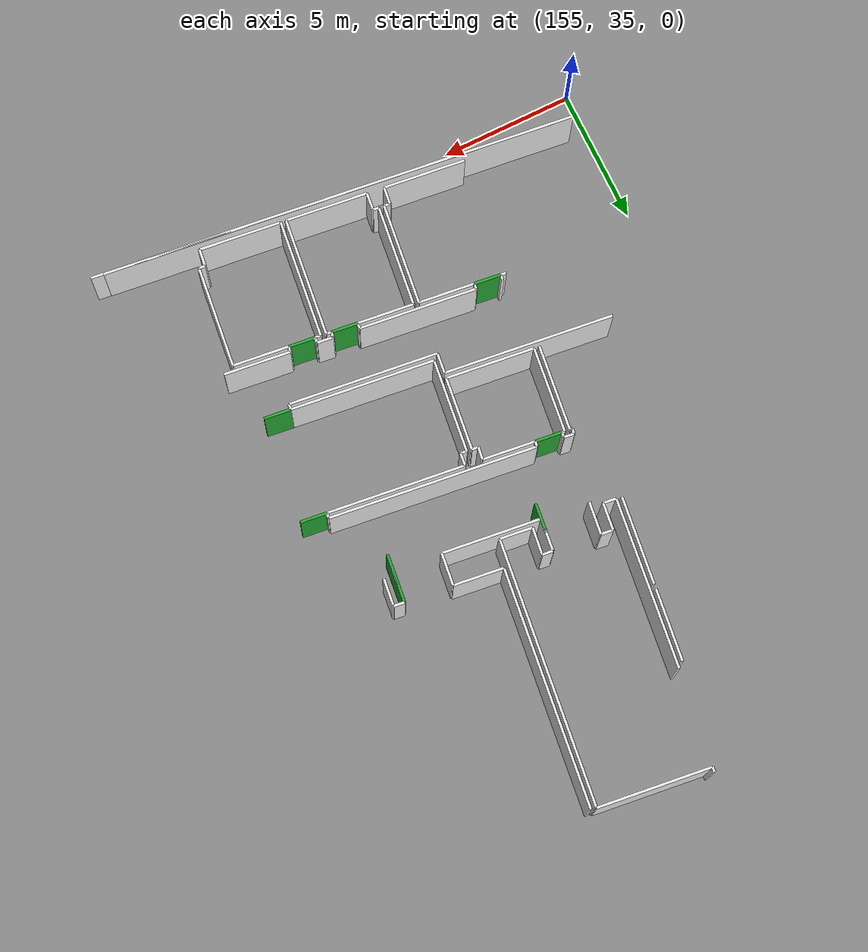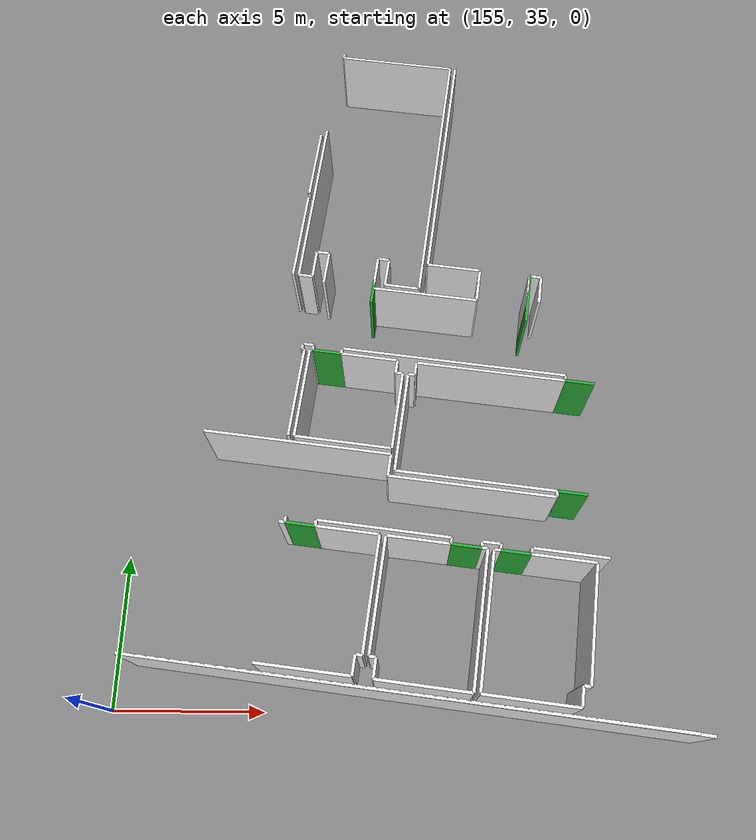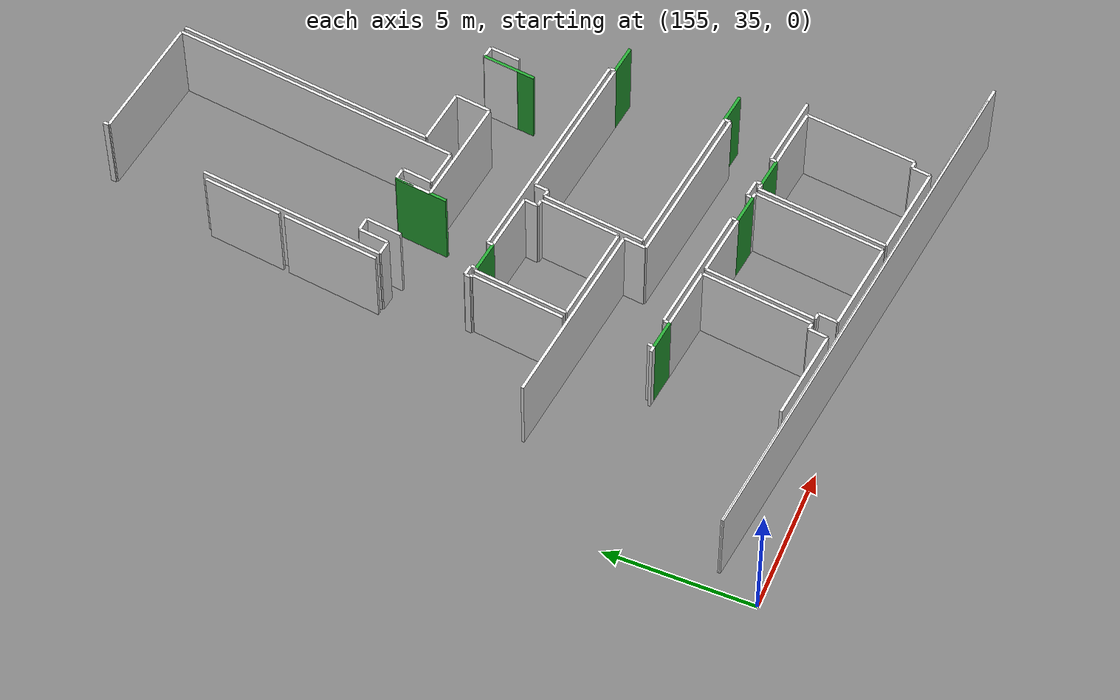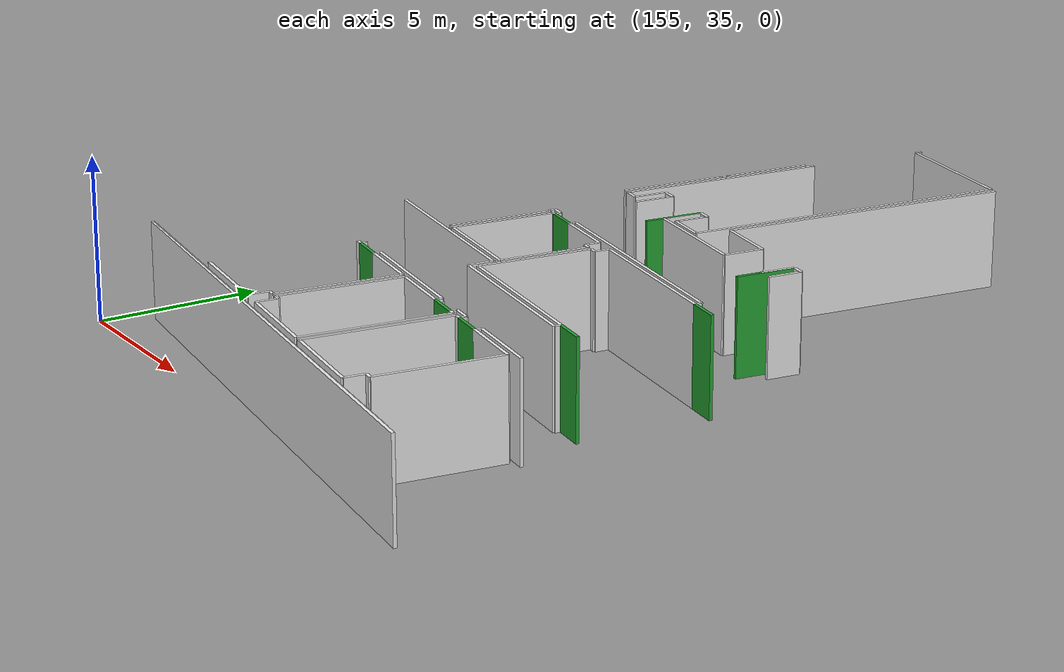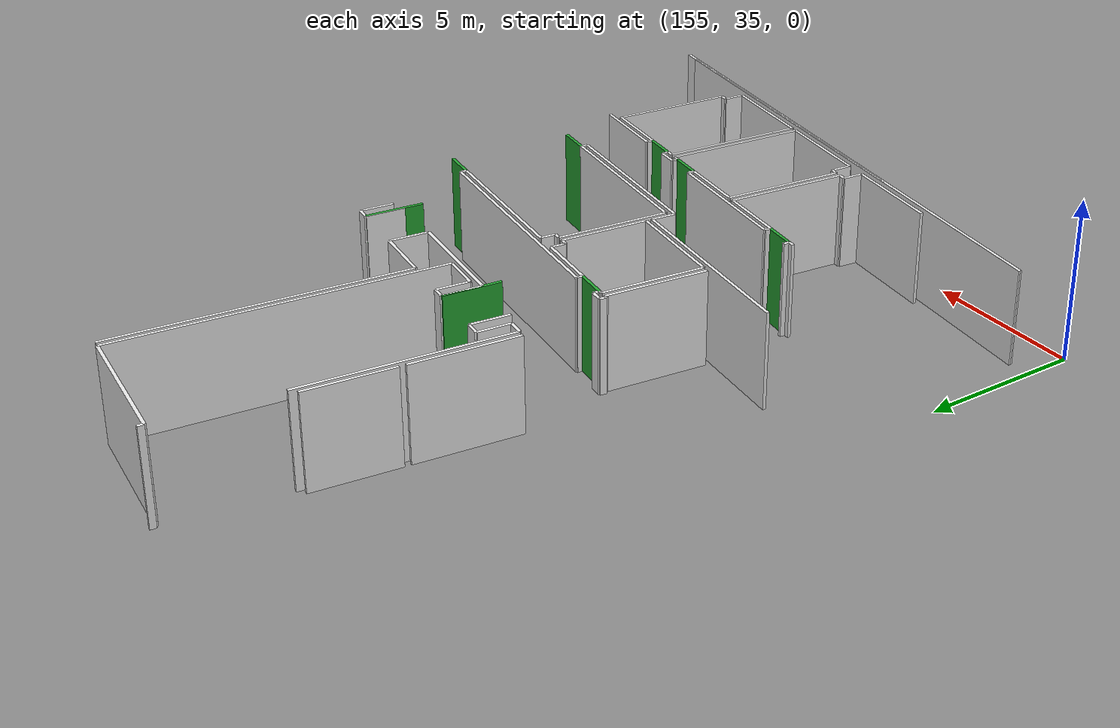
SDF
<sdf version="1.6">
 <world name="default">
  <model name="wall_166.5_39.9_1.5">
   <static>true</static>
   <pose>166.50500000000466 39.91000000014901 1.5 0 0 -0.1206236686924795</pose>
   <link name="link">
    <visual name="visual">
     <geometry><box><size>0.9972462083198822 0.1 3</size></box></geometry>
     <material>
      <script><uri>file://media/materials/scripts/gazebo.material</uri><name>Gazebo/Green</name></script>
     </material>
    </visual>
    <collision name="collision"><geometry><box><size>0.9972462083198822 0.1 3</size></box></geometry></collision>
   </link>
  </model>
  <model name="wall_161.1_40.6_1.5">
   <static>true</static>
   <pose>161.1350000000093 40.56000000005588 1.5 0 0 -0.1206236686924795</pose>
   <link name="link">
    <visual name="visual">
     <geometry><box><size>0.9972462083198822 0.1 3</size></box></geometry>
     <material>
      <script><uri>file://media/materials/scripts/gazebo.material</uri><name>Gazebo/Green</name></script>
     </material>
    </visual>
    <collision name="collision"><geometry><box><size>0.9972462083198822 0.1 3</size></box></geometry></collision>
   </link>
  </model>
  <model name="wall_168.1_39.7_1.5">
   <static>true</static>
   <pose>168.09500000000116 39.71999999997206 1.5 0 0 -0.12062366822190172</pose>
   <link name="link">
    <visual name="visual">
     <geometry><box><size>0.9972462083216332 0.1 3</size></box></geometry>
     <material>
      <script><uri>file://media/materials/scripts/gazebo.material</uri><name>Gazebo/Green</name></script>
     </material>
    </visual>
    <collision name="collision"><geometry><box><size>0.9972462083216332 0.1 3</size></box></geometry></collision>
   </link>
  </model>
  <model name="wall_161.8_46.7_1.5">
   <static>true</static>
   <pose>161.7600000000093 46.66000000014901 1.5 0 0 -0.11942892612851068</pose>
   <link name="link">
    <visual name="visual">
     <geometry><box><size>1.0071742649744493 0.1 3</size></box></geometry>
     <material>
      <script><uri>file://media/materials/scripts/gazebo.material</uri><name>Gazebo/Green</name></script>
     </material>
    </visual>
    <collision name="collision"><geometry><box><size>1.0071742649744493 0.1 3</size></box></geometry></collision>
   </link>
  </model>
  <model name="wall_170.5_45.6_1.5">
   <static>true</static>
   <pose>170.48499999998603 45.609999999869615 1.5 0 0 -0.1206236686924795</pose>
   <link name="link">
    <visual name="visual">
     <geometry><box><size>0.9972462083198822 0.1 3</size></box></geometry>
     <material>
      <script><uri>file://media/materials/scripts/gazebo.material</uri><name>Gazebo/Green</name></script>
     </material>
    </visual>
    <collision name="collision"><geometry><box><size>0.9972462083198822 0.1 3</size></box></geometry></collision>
   </link>
  </model>
  <model name="wall_168.8_48.8_1.5">
   <static>true</static>
   <pose>168.83500000002095 48.825000000186265 1.5 0 0 -1.6875809222415865</pose>
   <link name="link">
    <visual name="visual">
     <geometry><box><size>1.8022763384447233 0.1 3</size></box></geometry>
     <material>
      <script><uri>file://media/materials/scripts/gazebo.material</uri><name>Gazebo/Green</name></script>
     </material>
    </visual>
    <collision name="collision"><geometry><box><size>1.8022763384447233 0.1 3</size></box></geometry></collision>
   </link>
  </model>
  <model name="wall_163.4_49.5_1.5">
   <static>true</static>
   <pose>163.35500000003958 49.489999999757856 1.5 0 0 -1.6882310165537298</pose>
   <link name="link">
    <visual name="visual">
     <geometry><box><size>1.7923448331481016 0.1 3</size></box></geometry>
     <material>
      <script><uri>file://media/materials/scripts/gazebo.material</uri><name>Gazebo/Green</name></script>
     </material>
    </visual>
    <collision name="collision"><geometry><box><size>1.7923448331481016 0.1 3</size></box></geometry></collision>
   </link>
  </model>
  <model name="wall_170.0_41.7_1.5">
   <static>true</static>
   <pose>170.0100000000093 41.68999999994412 1.5 0 0 -0.11942892612851068</pose>
   <link name="link">
    <visual name="visual">
     <geometry><box><size>1.0071742649744493 0.1 3</size></box></geometry>
     <material>
      <script><uri>file://media/materials/scripts/gazebo.material</uri><name>Gazebo/Green</name></script>
     </material>
    </visual>
    <collision name="collision"><geometry><box><size>1.0071742649744493 0.1 3</size></box></geometry></collision>
   </link>
  </model>
  <model name="wall_166.9_37.6_1.5">
   <static>true</static>
   <pose>166.92499999998836 37.63000000012107 1.5 0 0 -1.690673321615393</pose>
   <link name="link">
    <visual name="visual">
     <geometry><box><size>4.4318055010582365 0.1 3</size></box></geometry>
     <material>
      <script><uri>file://media/materials/scripts/gazebo.material</uri><name>Gazebo/White</name></script>
     </material>
    </visual>
    <collision name="collision"><geometry><box><size>4.4318055010582365 0.1 3</size></box></geometry></collision>
   </link>
  </model>
  <model name="wall_165.1_35.6_1.5">
   <static>true</static>
   <pose>165.1349999999802 35.61499999999069 1.5 0 0 3.0208710707011033</pose>
   <link name="link">
    <visual name="visual">
     <geometry><box><size>3.0723606558584717 0.1 3</size></box></geometry>
     <material>
      <script><uri>file://media/materials/scripts/gazebo.material</uri><name>Gazebo/White</name></script>
     </material>
    </visual>
    <collision name="collision"><geometry><box><size>3.0723606558584717 0.1 3</size></box></geometry></collision>
   </link>
  </model>
  <model name="wall_163.6_36.1_1.5">
   <static>true</static>
   <pose>163.64499999998952 36.11999999987893 1.5 0 0 1.4618543698162652</pose>
   <link name="link">
    <visual name="visual">
     <geometry><box><size>0.6438167442431666 0.1 3</size></box></geometry>
     <material>
      <script><uri>file://media/materials/scripts/gazebo.material</uri><name>Gazebo/White</name></script>
     </material>
    </visual>
    <collision name="collision"><geometry><box><size>0.6438167442431666 0.1 3</size></box></geometry></collision>
   </link>
  </model>
  <model name="wall_163.6_36.5_1.5">
   <static>true</static>
   <pose>163.57000000000698 36.455000000074506 1.5 0 0 3.00606493842361</pose>
   <link name="link">
    <visual name="visual">
     <geometry><box><size>0.2220360331192952 0.1 3</size></box></geometry>
     <material>
      <script><uri>file://media/materials/scripts/gazebo.material</uri><name>Gazebo/White</name></script>
     </material>
    </visual>
    <collision name="collision"><geometry><box><size>0.2220360331192952 0.1 3</size></box></geometry></collision>
   </link>
  </model>
  <model name="wall_163.7_38.3_1.5">
   <static>true</static>
   <pose>163.69000000000233 38.34500000020489 1.5 0 0 1.44873942407576</pose>
   <link name="link">
    <visual name="visual">
     <geometry><box><size>3.7781079920994487 0.1 3</size></box></geometry>
     <material>
      <script><uri>file://media/materials/scripts/gazebo.material</uri><name>Gazebo/White</name></script>
     </material>
    </visual>
    <collision name="collision"><geometry><box><size>3.7781079920994487 0.1 3</size></box></geometry></collision>
   </link>
  </model>
  <model name="wall_165.0_40.1_1.5">
   <static>true</static>
   <pose>164.9649999999965 40.09500000020489 1.5 0 0 -0.11905156754423915</pose>
   <link name="link">
    <visual name="visual">
     <geometry><box><size>2.1048990474859015 0.1 3</size></box></geometry>
     <material>
      <script><uri>file://media/materials/scripts/gazebo.material</uri><name>Gazebo/White</name></script>
     </material>
    </visual>
    <collision name="collision"><geometry><box><size>2.1048990474859015 0.1 3</size></box></geometry></collision>
   </link>
  </model>
  <model name="wall_167.1_39.8_1.5">
   <static>true</static>
   <pose>167.09500000000116 39.84000000008382 1.5 0 0 -0.10487693882591773</pose>
   <link name="link">
    <visual name="visual">
     <geometry><box><size>0.19104973174969345 0.1 3</size></box></geometry>
     <material>
      <script><uri>file://media/materials/scripts/gazebo.material</uri><name>Gazebo/White</name></script>
     </material>
    </visual>
    <collision name="collision"><geometry><box><size>0.19104973174969345 0.1 3</size></box></geometry></collision>
   </link>
  </model>
  <model name="wall_162.7_40.4_1.5">
   <static>true</static>
   <pose>162.67499999998836 40.375 1.5 0 0 3.0225410860422697</pose>
   <link name="link">
    <visual name="visual">
     <geometry><box><size>2.104899047428106 0.1 3</size></box></geometry>
     <material>
      <script><uri>file://media/materials/scripts/gazebo.material</uri><name>Gazebo/White</name></script>
     </material>
    </visual>
    <collision name="collision"><geometry><box><size>2.104899047428106 0.1 3</size></box></geometry></collision>
   </link>
  </model>
  <model name="wall_160.5_40.6_1.5">
   <static>true</static>
   <pose>160.54000000000815 40.63000000012107 1.5 0 0 3.0419240010121844</pose>
   <link name="link">
    <visual name="visual">
     <geometry><box><size>0.20099751243585498 0.1 3</size></box></geometry>
     <material>
      <script><uri>file://media/materials/scripts/gazebo.material</uri><name>Gazebo/White</name></script>
     </material>
    </visual>
    <collision name="collision"><geometry><box><size>0.20099751243585498 0.1 3</size></box></geometry></collision>
   </link>
  </model>
  <model name="wall_161.4_36.1_1.5">
   <static>true</static>
   <pose>161.43499999999767 36.06000000005588 1.5 0 0 -0.11748918977593945</pose>
   <link name="link">
    <visual name="visual">
     <geometry><box><size>3.071172414652986 0.1 3</size></box></geometry>
     <material>
      <script><uri>file://media/materials/scripts/gazebo.material</uri><name>Gazebo/White</name></script>
     </material>
    </visual>
    <collision name="collision"><geometry><box><size>3.071172414652986 0.1 3</size></box></geometry></collision>
   </link>
  </model>
  <model name="wall_163.0_36.2_1.5">
   <static>true</static>
   <pose>163.0 36.199999999953434 1.5 0 0 1.4464413323376855</pose>
   <link name="link">
    <visual name="visual">
     <geometry><box><size>0.6449806199880641 0.1 3</size></box></geometry>
     <material>
      <script><uri>file://media/materials/scripts/gazebo.material</uri><name>Gazebo/White</name></script>
     </material>
    </visual>
    <collision name="collision"><geometry><box><size>0.6449806199880641 0.1 3</size></box></geometry></collision>
   </link>
  </model>
  <model name="wall_163.1_36.5_1.5">
   <static>true</static>
   <pose>163.14999999999418 36.50500000012107 1.5 0 0 -0.13552771305276134</pose>
   <link name="link">
    <visual name="visual">
     <geometry><box><size>0.22203603311405212 0.1 3</size></box></geometry>
     <material>
      <script><uri>file://media/materials/scripts/gazebo.material</uri><name>Gazebo/White</name></script>
     </material>
    </visual>
    <collision name="collision"><geometry><box><size>0.22203603311405212 0.1 3</size></box></geometry></collision>
   </link>
  </model>
  <model name="wall_163.5_38.4_1.5">
   <static>true</static>
   <pose>163.4899999999907 38.37000000011176 1.5 0 0 1.4490608416488255</pose>
   <link name="link">
    <visual name="visual">
     <geometry><box><size>3.7880337905415886 0.1 3</size></box></geometry>
     <material>
      <script><uri>file://media/materials/scripts/gazebo.material</uri><name>Gazebo/White</name></script>
     </material>
    </visual>
    <collision name="collision"><geometry><box><size>3.7880337905415886 0.1 3</size></box></geometry></collision>
   </link>
  </model>
  <model name="wall_170.4_37.5_1.5">
   <static>true</static>
   <pose>170.44499999997788 37.53000000002794 1.5 0 0 -1.6899106225096845</pose>
   <link name="link">
    <visual name="visual">
     <geometry><box><size>3.7868324496644155 0.1 3</size></box></geometry>
     <material>
      <script><uri>file://media/materials/scripts/gazebo.material</uri><name>Gazebo/White</name></script>
     </material>
    </visual>
    <collision name="collision"><geometry><box><size>3.7868324496644155 0.1 3</size></box></geometry></collision>
   </link>
  </model>
  <model name="wall_170.1_35.7_1.5">
   <static>true</static>
   <pose>170.10499999998137 35.66500000003725 1.5 0 0 3.0118901153086775</pose>
   <link name="link">
    <visual name="visual">
     <geometry><box><size>0.23194827011012187 0.1 3</size></box></geometry>
     <material>
      <script><uri>file://media/materials/scripts/gazebo.material</uri><name>Gazebo/White</name></script>
     </material>
    </visual>
    <collision name="collision"><geometry><box><size>0.23194827011012187 0.1 3</size></box></geometry></collision>
   </link>
  </model>
  <model name="wall_169.9_35.4_1.5">
   <static>true</static>
   <pose>169.94999999998254 35.360000000102445 1.5 0 0 -1.695151321341658</pose>
   <link name="link">
    <visual name="visual">
     <geometry><box><size>0.6449806199952839 0.1 3</size></box></geometry>
     <material>
      <script><uri>file://media/materials/scripts/gazebo.material</uri><name>Gazebo/White</name></script>
     </material>
    </visual>
    <collision name="collision"><geometry><box><size>0.6449806199952839 0.1 3</size></box></geometry></collision>
   </link>
  </model>
  <model name="wall_168.4_35.2_1.5">
   <static>true</static>
   <pose>168.3849999999802 35.22500000009313 1.5 0 0 3.020871070550642</pose>
   <link name="link">
    <visual name="visual">
     <geometry><box><size>3.0723606559145504 0.1 3</size></box></geometry>
     <material>
      <script><uri>file://media/materials/scripts/gazebo.material</uri><name>Gazebo/White</name></script>
     </material>
    </visual>
    <collision name="collision"><geometry><box><size>3.0723606559145504 0.1 3</size></box></geometry></collision>
   </link>
  </model>
  <model name="wall_167.1_37.6_1.5">
   <static>true</static>
   <pose>167.125 37.60499999998137 1.5 0 0 1.4506488810357367</pose>
   <link name="link">
    <visual name="visual">
     <geometry><box><size>4.421877428998444 0.1 3</size></box></geometry>
     <material>
      <script><uri>file://media/materials/scripts/gazebo.material</uri><name>Gazebo/White</name></script>
     </material>
    </visual>
    <collision name="collision"><geometry><box><size>4.421877428998444 0.1 3</size></box></geometry></collision>
   </link>
  </model>
  <model name="wall_167.5_39.8_1.5">
   <static>true</static>
   <pose>167.49499999999534 39.78999999980442 1.5 0 0 -0.09495170644739931</pose>
   <link name="link">
    <visual name="visual">
     <geometry><box><size>0.21095023106197072 0.1 3</size></box></geometry>
     <material>
      <script><uri>file://media/materials/scripts/gazebo.material</uri><name>Gazebo/White</name></script>
     </material>
    </visual>
    <collision name="collision"><geometry><box><size>0.21095023106197072 0.1 3</size></box></geometry></collision>
   </link>
  </model>
  <model name="wall_169.6_39.5_1.5">
   <static>true</static>
   <pose>169.63000000000466 39.53500000014901 1.5 0 0 -0.11961849947817037</pose>
   <link name="link">
    <visual name="visual">
     <geometry><box><size>2.094970166810415 0.1 3</size></box></geometry>
     <material>
      <script><uri>file://media/materials/scripts/gazebo.material</uri><name>Gazebo/White</name></script>
     </material>
    </visual>
    <collision name="collision"><geometry><box><size>2.094970166810415 0.1 3</size></box></geometry></collision>
   </link>
  </model>
  <model name="wall_170.0_45.8_1.5">
   <static>true</static>
   <pose>170.0 45.764999999897555 1.5 0 0 1.4659193879370842</pose>
   <link name="link">
    <visual name="visual">
     <geometry><box><size>0.19104973169180559 0.1 3</size></box></geometry>
     <material>
      <script><uri>file://media/materials/scripts/gazebo.material</uri><name>Gazebo/White</name></script>
     </material>
    </visual>
    <collision name="collision"><geometry><box><size>0.19104973169180559 0.1 3</size></box></geometry></collision>
   </link>
  </model>
  <model name="wall_166.1_46.3_1.5">
   <static>true</static>
   <pose>166.14500000001863 46.324999999953434 1.5 0 0 3.0218576675715907</pose>
   <link name="link">
    <visual name="visual">
     <geometry><box><size>7.7857433813364185 0.1 3</size></box></geometry>
     <material>
      <script><uri>file://media/materials/scripts/gazebo.material</uri><name>Gazebo/White</name></script>
     </material>
    </visual>
    <collision name="collision"><geometry><box><size>7.7857433813364185 0.1 3</size></box></geometry></collision>
   </link>
  </model>
  <model name="wall_162.3_46.7_1.5">
   <static>true</static>
   <pose>162.27000000001863 46.69500000006519 1.5 0 0 -1.675673265652709</pose>
   <link name="link">
    <visual name="visual">
     <geometry><box><size>0.19104973169180559 0.1 3</size></box></geometry>
     <material>
      <script><uri>file://media/materials/scripts/gazebo.material</uri><name>Gazebo/White</name></script>
     </material>
    </visual>
    <collision name="collision"><geometry><box><size>0.19104973169180559 0.1 3</size></box></geometry></collision>
   </link>
  </model>
  <model name="wall_161.3_46.8_1.5">
   <static>true</static>
   <pose>161.27000000001863 46.81500000017695 1.5 0 0 1.4659193879370842</pose>
   <link name="link">
    <visual name="visual">
     <geometry><box><size>0.19104973169180559 0.1 3</size></box></geometry>
     <material>
      <script><uri>file://media/materials/scripts/gazebo.material</uri><name>Gazebo/White</name></script>
     </material>
    </visual>
    <collision name="collision"><geometry><box><size>0.19104973169180559 0.1 3</size></box></geometry></collision>
   </link>
  </model>
  <model name="wall_161.1_46.9_1.5">
   <static>true</static>
   <pose>161.09500000000116 46.93500000005588 1.5 0 0 3.007271212150422</pose>
   <link name="link">
    <visual name="visual">
     <geometry><box><size>0.3733630940800139 0.1 3</size></box></geometry>
     <material>
      <script><uri>file://media/materials/scripts/gazebo.material</uri><name>Gazebo/White</name></script>
     </material>
    </visual>
    <collision name="collision"><geometry><box><size>0.3733630940800139 0.1 3</size></box></geometry></collision>
   </link>
  </model>
  <model name="wall_160.9_46.9_1.5">
   <static>true</static>
   <pose>160.89499999998952 46.859999999869615 1.5 0 0 -1.7196862741197598</pose>
   <link name="link">
    <visual name="visual">
     <geometry><box><size>0.20223748434128064 0.1 3</size></box></geometry>
     <material>
      <script><uri>file://media/materials/scripts/gazebo.material</uri><name>Gazebo/White</name></script>
     </material>
    </visual>
    <collision name="collision"><geometry><box><size>0.20223748434128064 0.1 3</size></box></geometry></collision>
   </link>
  </model>
  <model name="wall_161.6_50.0_1.5">
   <static>true</static>
   <pose>161.60500000001048 49.984999999869615 1.5 0 0 1.4474586259198403</pose>
   <link name="link">
    <visual name="visual">
     <geometry><box><size>1.2192620718694447 0.1 3</size></box></geometry>
     <material>
      <script><uri>file://media/materials/scripts/gazebo.material</uri><name>Gazebo/White</name></script>
     </material>
    </visual>
    <collision name="collision"><geometry><box><size>1.2192620718694447 0.1 3</size></box></geometry></collision>
   </link>
  </model>
  <model name="wall_163.4_49.8_1.5">
   <static>true</static>
   <pose>163.39000000001397 49.77499999990687 1.5 0 0 -1.6859866085024886</pose>
   <link name="link">
    <visual name="visual">
     <geometry><box><size>1.2180722474113592 0.1 3</size></box></geometry>
     <material>
      <script><uri>file://media/materials/scripts/gazebo.material</uri><name>Gazebo/White</name></script>
     </material>
    </visual>
    <collision name="collision"><geometry><box><size>1.2180722474113592 0.1 3</size></box></geometry></collision>
   </link>
  </model>
  <model name="wall_165.2_48.9_1.5">
   <static>true</static>
   <pose>165.1600000000035 48.949999999953434 1.5 0 0 -0.11900029336803308</pose>
   <link name="link">
    <visual name="visual">
     <geometry><box><size>3.7062110031539515 0.1 3</size></box></geometry>
     <material>
      <script><uri>file://media/materials/scripts/gazebo.material</uri><name>Gazebo/White</name></script>
     </material>
    </visual>
    <collision name="collision"><geometry><box><size>3.7062110031539515 0.1 3</size></box></geometry></collision>
   </link>
  </model>
  <model name="wall_167.1_49.3_1.5">
   <static>true</static>
   <pose>167.07500000001164 49.330000000074506 1.5 0 0 1.446441332248135</pose>
   <link name="link">
    <visual name="visual">
     <geometry><box><size>1.2093386624324964 0.1 3</size></box></geometry>
     <material>
      <script><uri>file://media/materials/scripts/gazebo.material</uri><name>Gazebo/White</name></script>
     </material>
    </visual>
    <collision name="collision"><geometry><box><size>1.2093386624324964 0.1 3</size></box></geometry></collision>
   </link>
  </model>
  <model name="wall_168.9_49.1_1.5">
   <static>true</static>
   <pose>168.8649999999907 49.11499999999069 1.5 0 0 -1.6941340276703445</pose>
   <link name="link">
    <visual name="visual">
     <geometry><box><size>1.2192620723387293 0.1 3</size></box></geometry>
     <material>
      <script><uri>file://media/materials/scripts/gazebo.material</uri><name>Gazebo/White</name></script>
     </material>
    </visual>
    <collision name="collision"><geometry><box><size>1.2192620723387293 0.1 3</size></box></geometry></collision>
   </link>
  </model>
  <model name="wall_166.8_42.1_1.5">
   <static>true</static>
   <pose>166.8399999999965 42.07000000006519 1.5 0 0 3.0223114162191558</pose>
   <link name="link">
    <visual name="visual">
     <geometry><box><size>5.378215317411569 0.1 3</size></box></geometry>
     <material>
      <script><uri>file://media/materials/scripts/gazebo.material</uri><name>Gazebo/White</name></script>
     </material>
    </visual>
    <collision name="collision"><geometry><box><size>5.378215317411569 0.1 3</size></box></geometry></collision>
   </link>
  </model>
  <model name="wall_164.4_44.1_1.5">
   <static>true</static>
   <pose>164.38000000000466 44.12000000011176 1.5 0 0 1.4500000360731269</pose>
   <link name="link">
    <visual name="visual">
     <geometry><box><size>3.4853981120924216 0.1 3</size></box></geometry>
     <material>
      <script><uri>file://media/materials/scripts/gazebo.material</uri><name>Gazebo/White</name></script>
     </material>
    </visual>
    <collision name="collision"><geometry><box><size>3.4853981120924216 0.1 3</size></box></geometry></collision>
   </link>
  </model>
  <model name="wall_164.7_45.8_1.5">
   <static>true</static>
   <pose>164.7050000000163 45.83499999996275 1.5 0 0 -0.12970253828111597</pose>
   <link name="link">
    <visual name="visual">
     <geometry><box><size>0.23194827011012187 0.1 3</size></box></geometry>
     <material>
      <script><uri>file://media/materials/scripts/gazebo.material</uri><name>Gazebo/White</name></script>
     </material>
    </visual>
    <collision name="collision"><geometry><box><size>0.23194827011012187 0.1 3</size></box></geometry></collision>
   </link>
  </model>
  <model name="wall_164.8_46.0_1.5">
   <static>true</static>
   <pose>164.84500000000116 46.049999999813735 1.5 0 0 1.4625257359507529</pose>
   <link name="link">
    <visual name="visual">
     <geometry><box><size>0.46270941201207827 0.1 3</size></box></geometry>
     <material>
      <script><uri>file://media/materials/scripts/gazebo.material</uri><name>Gazebo/White</name></script>
     </material>
    </visual>
    <collision name="collision"><geometry><box><size>0.46270941201207827 0.1 3</size></box></geometry></collision>
   </link>
  </model>
  <model name="wall_167.4_46.0_1.5">
   <static>true</static>
   <pose>167.42999999999302 45.9749999998603 1.5 0 0 -0.11858166439217471</pose>
   <link name="link">
    <visual name="visual">
     <geometry><box><size>5.156209848308469 0.1 3</size></box></geometry>
     <material>
      <script><uri>file://media/materials/scripts/gazebo.material</uri><name>Gazebo/White</name></script>
     </material>
    </visual>
    <collision name="collision"><geometry><box><size>5.156209848308469 0.1 3</size></box></geometry></collision>
   </link>
  </model>
  <model name="wall_160.6_51.4_1.5">
   <static>true</static>
   <pose>160.60999999998603 51.35000000009313 1.5 0 0 1.4487071893822745</pose>
   <link name="link">
    <visual name="visual">
     <geometry><box><size>3.284448203056534 0.1 3</size></box></geometry>
     <material>
      <script><uri>file://media/materials/scripts/gazebo.material</uri><name>Gazebo/White</name></script>
     </material>
    </visual>
    <collision name="collision"><geometry><box><size>3.284448203056534 0.1 3</size></box></geometry></collision>
   </link>
  </model>
  <model name="wall_161.9_59.7_1.5">
   <static>true</static>
   <pose>161.9199999999837 59.66499999980442 1.5 0 0 -1.675673265652709</pose>
   <link name="link">
    <visual name="visual">
     <geometry><box><size>0.19104973169180559 0.1 3</size></box></geometry>
     <material>
      <script><uri>file://media/materials/scripts/gazebo.material</uri><name>Gazebo/White</name></script>
     </material>
    </visual>
    <collision name="collision"><geometry><box><size>0.19104973169180559 0.1 3</size></box></geometry></collision>
   </link>
  </model>
  <model name="wall_164.0_59.3_1.5">
   <static>true</static>
   <pose>164.02999999999884 59.31499999994412 1.5 0 0 -0.11970791786700266</pose>
   <link name="link">
    <visual name="visual">
     <geometry><box><size>4.27056202392456 0.1 3</size></box></geometry>
     <material>
      <script><uri>file://media/materials/scripts/gazebo.material</uri><name>Gazebo/White</name></script>
     </material>
    </visual>
    <collision name="collision"><geometry><box><size>4.27056202392456 0.1 3</size></box></geometry></collision>
   </link>
  </model>
  <model name="wall_165.6_54.1_1.5">
   <static>true</static>
   <pose>165.55000000001746 54.11499999999069 1.5 0 0 -1.691540779261425</pose>
   <link name="link">
    <visual name="visual">
     <geometry><box><size>9.96253481813775 0.1 3</size></box></geometry>
     <material>
      <script><uri>file://media/materials/scripts/gazebo.material</uri><name>Gazebo/White</name></script>
     </material>
    </visual>
    <collision name="collision"><geometry><box><size>9.96253481813775 0.1 3</size></box></geometry></collision>
   </link>
  </model>
  <model name="wall_164.3_49.2_1.5">
   <static>true</static>
   <pose>164.3399999999965 49.24499999987893 1.5 0 0 3.0192558198525035</pose>
   <link name="link">
    <visual name="visual">
     <geometry><box><size>1.2291867230188886 0.1 3</size></box></geometry>
     <material>
      <script><uri>file://media/materials/scripts/gazebo.material</uri><name>Gazebo/White</name></script>
     </material>
    </visual>
    <collision name="collision"><geometry><box><size>1.2291867230188886 0.1 3</size></box></geometry></collision>
   </link>
  </model>
  <model name="wall_163.8_49.8_1.5">
   <static>true</static>
   <pose>163.7949999999837 49.824999999953434 1.5 0 0 1.44278726814752</pose>
   <link name="link">
    <visual name="visual">
     <geometry><box><size>1.0183319696888344 0.1 3</size></box></geometry>
     <material>
      <script><uri>file://media/materials/scripts/gazebo.material</uri><name>Gazebo/White</name></script>
     </material>
    </visual>
    <collision name="collision"><geometry><box><size>1.0183319696888344 0.1 3</size></box></geometry></collision>
   </link>
  </model>
  <model name="wall_163.7_50.4_1.5">
   <static>true</static>
   <pose>163.6600000000035 50.35499999998137 1.5 0 0 3.017237659490783</pose>
   <link name="link">
    <visual name="visual">
     <geometry><box><size>0.4031128873571693 0.1 3</size></box></geometry>
     <material>
      <script><uri>file://media/materials/scripts/gazebo.material</uri><name>Gazebo/White</name></script>
     </material>
    </visual>
    <collision name="collision"><geometry><box><size>0.4031128873571693 0.1 3</size></box></geometry></collision>
   </link>
  </model>
  <model name="wall_161.5_50.6_1.5">
   <static>true</static>
   <pose>161.4549999999872 50.61499999999069 1.5 0 0 3.030935431805427</pose>
   <link name="link">
    <visual name="visual">
     <geometry><box><size>0.4527692569492954 0.1 3</size></box></geometry>
     <material>
      <script><uri>file://media/materials/scripts/gazebo.material</uri><name>Gazebo/White</name></script>
     </material>
    </visual>
    <collision name="collision"><geometry><box><size>0.4527692569492954 0.1 3</size></box></geometry></collision>
   </link>
  </model>
  <model name="wall_161.2_50.1_1.5">
   <static>true</static>
   <pose>161.1699999999837 50.13500000000931 1.5 0 0 -1.6890538359013414</pose>
   <link name="link">
    <visual name="visual">
     <geometry><box><size>1.0171037314295985 0.1 3</size></box></geometry>
     <material>
      <script><uri>file://media/materials/scripts/gazebo.material</uri><name>Gazebo/White</name></script>
     </material>
    </visual>
    <collision name="collision"><geometry><box><size>1.0171037314295985 0.1 3</size></box></geometry></collision>
   </link>
  </model>
  <model name="wall_160.9_49.7_1.5">
   <static>true</static>
   <pose>160.8649999999907 49.65999999991618 1.5 0 0 3.019750216455228</pose>
   <link name="link">
    <visual name="visual">
     <geometry><box><size>0.4936598018854468 0.1 3</size></box></geometry>
     <material>
      <script><uri>file://media/materials/scripts/gazebo.material</uri><name>Gazebo/White</name></script>
     </material>
    </visual>
    <collision name="collision"><geometry><box><size>0.4936598018854468 0.1 3</size></box></geometry></collision>
   </link>
  </model>
  <model name="wall_161.0_52.9_1.5">
   <static>true</static>
   <pose>161.0 52.85499999998137 1.5 0 0 1.4513051071243046</pose>
   <link name="link">
    <visual name="visual">
     <geometry><box><size>6.375460767737294 0.1 3</size></box></geometry>
     <material>
      <script><uri>file://media/materials/scripts/gazebo.material</uri><name>Gazebo/White</name></script>
     </material>
    </visual>
    <collision name="collision"><geometry><box><size>6.375460767737294 0.1 3</size></box></geometry></collision>
   </link>
  </model>
  <model name="wall_169.3_49.2_1.5">
   <static>true</static>
   <pose>169.27999999999884 49.15999999991618 1.5 0 0 1.453687582178367</pose>
   <link name="link">
    <visual name="visual">
     <geometry><box><size>1.0270345661421774 0.1 3</size></box></geometry>
     <material>
      <script><uri>file://media/materials/scripts/gazebo.material</uri><name>Gazebo/White</name></script>
     </material>
    </visual>
    <collision name="collision"><geometry><box><size>1.0270345661421774 0.1 3</size></box></geometry></collision>
   </link>
  </model>
  <model name="wall_169.1_49.7_1.5">
   <static>true</static>
   <pose>169.14000000001397 49.69500000006519 1.5 0 0 3.01723765836245</pose>
   <link name="link">
    <visual name="visual">
     <geometry><box><size>0.4031128874726857 0.1 3</size></box></geometry>
     <material>
      <script><uri>file://media/materials/scripts/gazebo.material</uri><name>Gazebo/White</name></script>
     </material>
    </visual>
    <collision name="collision"><geometry><box><size>0.4031128874726857 0.1 3</size></box></geometry></collision>
   </link>
  </model>
  <model name="wall_166.2_50.0_1.5">
   <static>true</static>
   <pose>166.21000000002095 50.045000000158325 1.5 0 0 3.0198571684511863</pose>
   <link name="link">
    <visual name="visual">
     <geometry><box><size>1.894016895386348 0.1 3</size></box></geometry>
     <material>
      <script><uri>file://media/materials/scripts/gazebo.material</uri><name>Gazebo/White</name></script>
     </material>
    </visual>
    <collision name="collision"><geometry><box><size>1.894016895386348 0.1 3</size></box></geometry></collision>
   </link>
  </model>
  <model name="wall_165.8_54.6_1.5">
   <static>true</static>
   <pose>165.80999999999767 54.59499999997206 1.5 0 0 1.4496339921387622</pose>
   <link name="link">
    <visual name="visual">
     <geometry><box><size>8.935507819571937 0.1 3</size></box></geometry>
     <material>
      <script><uri>file://media/materials/scripts/gazebo.material</uri><name>Gazebo/White</name></script>
     </material>
    </visual>
    <collision name="collision"><geometry><box><size>8.935507819571937 0.1 3</size></box></geometry></collision>
   </link>
  </model>
  <model name="wall_160.8_45.2_1.5">
   <static>true</static>
   <pose>160.77499999999418 45.16500000003725 1.5 0 0 -1.6932095761983161</pose>
   <link name="link">
    <visual name="visual">
     <geometry><box><size>3.193900436690713 0.1 3</size></box></geometry>
     <material>
      <script><uri>file://media/materials/scripts/gazebo.material</uri><name>Gazebo/White</name></script>
     </material>
    </visual>
    <collision name="collision"><geometry><box><size>3.193900436690713 0.1 3</size></box></geometry></collision>
   </link>
  </model>
  <model name="wall_160.9_46.8_1.5">
   <static>true</static>
   <pose>160.92499999998836 46.75499999988824 1.5 0 0 -0.11065721876040727</pose>
   <link name="link">
    <visual name="visual">
     <geometry><box><size>0.09055385132429387 0.1 3</size></box></geometry>
     <material>
      <script><uri>file://media/materials/scripts/gazebo.material</uri><name>Gazebo/White</name></script>
     </material>
    </visual>
    <collision name="collision"><geometry><box><size>0.09055385132429387 0.1 3</size></box></geometry></collision>
   </link>
  </model>
  <model name="wall_161.0_45.1_1.5">
   <static>true</static>
   <pose>160.97000000000116 45.14500000001863 1.5 0 0 1.4514917943710839</pose>
   <link name="link">
    <visual name="visual">
     <geometry><box><size>3.1926947864596977 0.1 3</size></box></geometry>
     <material>
      <script><uri>file://media/materials/scripts/gazebo.material</uri><name>Gazebo/White</name></script>
     </material>
    </visual>
    <collision name="collision"><geometry><box><size>3.1926947864596977 0.1 3</size></box></geometry></collision>
   </link>
  </model>
  <model name="wall_161.2_46.7_1.5">
   <static>true</static>
   <pose>161.20999999999185 46.72500000009313 1.5 0 0 -0.09966865024353948</pose>
   <link name="link">
    <visual name="visual">
     <geometry><box><size>0.10049875622371936 0.1 3</size></box></geometry>
     <material>
      <script><uri>file://media/materials/scripts/gazebo.material</uri><name>Gazebo/White</name></script>
     </material>
    </visual>
    <collision name="collision"><geometry><box><size>0.10049875622371936 0.1 3</size></box></geometry></collision>
   </link>
  </model>
  <model name="wall_163.2_46.5_1.5">
   <static>true</static>
   <pose>163.2399999999907 46.47999999998137 1.5 0 0 -0.12184243713456504</pose>
   <link name="link">
    <visual name="visual">
     <geometry><box><size>1.9746392075417871 0.1 3</size></box></geometry>
     <material>
      <script><uri>file://media/materials/scripts/gazebo.material</uri><name>Gazebo/White</name></script>
     </material>
    </visual>
    <collision name="collision"><geometry><box><size>1.9746392075417871 0.1 3</size></box></geometry></collision>
   </link>
  </model>
  <model name="wall_164.2_46.1_1.5">
   <static>true</static>
   <pose>164.18999999997322 46.12999999988824 1.5 0 0 -1.7004988639562184</pose>
   <link name="link">
    <visual name="visual">
     <geometry><box><size>0.46389654015248694 0.1 3</size></box></geometry>
     <material>
      <script><uri>file://media/materials/scripts/gazebo.material</uri><name>Gazebo/White</name></script>
     </material>
    </visual>
    <collision name="collision"><geometry><box><size>0.46389654015248694 0.1 3</size></box></geometry></collision>
   </link>
  </model>
  <model name="wall_164.3_45.9_1.5">
   <static>true</static>
   <pose>164.27999999999884 45.88500000000931 1.5 0 0 -0.12435499368110904</pose>
   <link name="link">
    <visual name="visual">
     <geometry><box><size>0.24186773247205975 0.1 3</size></box></geometry>
     <material>
      <script><uri>file://media/materials/scripts/gazebo.material</uri><name>Gazebo/White</name></script>
     </material>
    </visual>
    <collision name="collision"><geometry><box><size>0.24186773247205975 0.1 3</size></box></geometry></collision>
   </link>
  </model>
  <model name="wall_164.2_44.5_1.5">
   <static>true</static>
   <pose>164.23500000001513 44.515000000130385 1.5 0 0 -1.6919709595141523</pose>
   <link name="link">
    <visual name="visual">
     <geometry><box><size>2.73001831492187 0.1 3</size></box></geometry>
     <material>
      <script><uri>file://media/materials/scripts/gazebo.material</uri><name>Gazebo/White</name></script>
     </material>
    </visual>
    <collision name="collision"><geometry><box><size>2.73001831492187 0.1 3</size></box></geometry></collision>
   </link>
  </model>
  <model name="wall_162.4_43.4_1.5">
   <static>true</static>
   <pose>162.42500000001746 43.360000000102445 1.5 0 0 3.0206059098054316</pose>
   <link name="link">
    <visual name="visual">
     <geometry><box><size>3.3142269083132514 0.1 3</size></box></geometry>
     <material>
      <script><uri>file://media/materials/scripts/gazebo.material</uri><name>Gazebo/White</name></script>
     </material>
    </visual>
    <collision name="collision"><geometry><box><size>3.3142269083132514 0.1 3</size></box></geometry></collision>
   </link>
  </model>
  <model name="wall_161.0_54.5_1.5">
   <static>true</static>
   <pose>160.99499999999534 54.50499999988824 1.5 0 0 1.4478244572426628</pose>
   <link name="link">
    <visual name="visual">
     <geometry><box><size>2.6903159664943592 0.1 3</size></box></geometry>
     <material>
      <script><uri>file://media/materials/scripts/gazebo.material</uri><name>Gazebo/White</name></script>
     </material>
    </visual>
    <collision name="collision"><geometry><box><size>2.6903159664943592 0.1 3</size></box></geometry></collision>
   </link>
  </model>
  <model name="wall_166.7_41.9_1.5">
   <static>true</static>
   <pose>166.72000000000116 41.87999999988824 1.5 0 0 -0.11857471213006499</pose>
   <link name="link">
    <visual name="visual">
     <geometry><box><size>5.579175566332764 0.1 3</size></box></geometry>
     <material>
      <script><uri>file://media/materials/scripts/gazebo.material</uri><name>Gazebo/White</name></script>
     </material>
    </visual>
    <collision name="collision"><geometry><box><size>5.579175566332764 0.1 3</size></box></geometry></collision>
   </link>
  </model>
  <model name="wall_169.5_41.6_1.5">
   <static>true</static>
   <pose>169.5 41.64999999990687 1.5 0 0 1.4711276743037347</pose>
   <link name="link">
    <visual name="visual">
     <geometry><box><size>0.20099751260961132 0.1 3</size></box></geometry>
     <material>
      <script><uri>file://media/materials/scripts/gazebo.material</uri><name>Gazebo/White</name></script>
     </material>
    </visual>
    <collision name="collision"><geometry><box><size>0.20099751260961132 0.1 3</size></box></geometry></collision>
   </link>
  </model>
  <model name="wall_169.9_39.7_1.5">
   <static>true</static>
   <pose>169.85500000001048 39.70999999996275 1.5 0 0 3.0207271763608894</pose>
   <link name="link">
    <visual name="visual">
     <geometry><box><size>2.4881519246295563 0.1 3</size></box></geometry>
     <material>
      <script><uri>file://media/materials/scripts/gazebo.material</uri><name>Gazebo/White</name></script>
     </material>
    </visual>
    <collision name="collision"><geometry><box><size>2.4881519246295563 0.1 3</size></box></geometry></collision>
   </link>
  </model>
  <model name="wall_168.6_39.8_1.5">
   <static>true</static>
   <pose>168.60500000001048 39.76000000000931 1.5 0 0 -1.7196862744613206</pose>
   <link name="link">
    <visual name="visual">
     <geometry><box><size>0.20223748388077126 0.1 3</size></box></geometry>
     <material>
      <script><uri>file://media/materials/scripts/gazebo.material</uri><name>Gazebo/White</name></script>
     </material>
    </visual>
    <collision name="collision"><geometry><box><size>0.20223748388077126 0.1 3</size></box></geometry></collision>
   </link>
  </model>
  <model name="wall_167.6_39.9_1.5">
   <static>true</static>
   <pose>167.60999999998603 39.87999999988824 1.5 0 0 1.4711276743037347</pose>
   <link name="link">
    <visual name="visual">
     <geometry><box><size>0.20099751260961132 0.1 3</size></box></geometry>
     <material>
      <script><uri>file://media/materials/scripts/gazebo.material</uri><name>Gazebo/White</name></script>
     </material>
    </visual>
    <collision name="collision"><geometry><box><size>0.20099751260961132 0.1 3</size></box></geometry></collision>
   </link>
  </model>
  <model name="wall_167.3_40.0_1.5">
   <static>true</static>
   <pose>167.32000000000698 40.014999999897555 1.5 0 0 3.0254510269809813</pose>
   <link name="link">
    <visual name="visual">
     <geometry><box><size>0.6040695323790061 0.1 3</size></box></geometry>
     <material>
      <script><uri>file://media/materials/scripts/gazebo.material</uri><name>Gazebo/White</name></script>
     </material>
    </visual>
    <collision name="collision"><geometry><box><size>0.6040695323790061 0.1 3</size></box></geometry></collision>
   </link>
  </model>
  <model name="wall_167.0_39.9_1.5">
   <static>true</static>
   <pose>167.0100000000093 39.949999999953434 1.5 0 0 -1.670464979516584</pose>
   <link name="link">
    <visual name="visual">
     <geometry><box><size>0.20099751214626105 0.1 3</size></box></geometry>
     <material>
      <script><uri>file://media/materials/scripts/gazebo.material</uri><name>Gazebo/White</name></script>
     </material>
    </visual>
    <collision name="collision"><geometry><box><size>0.20099751214626105 0.1 3</size></box></geometry></collision>
   </link>
  </model>
  <model name="wall_166.0_40.1_1.5">
   <static>true</static>
   <pose>166.02000000001863 40.07000000006519 1.5 0 0 1.471127674073209</pose>
   <link name="link">
    <visual name="visual">
     <geometry><box><size>0.20099751214626105 0.1 3</size></box></geometry>
     <material>
      <script><uri>file://media/materials/scripts/gazebo.material</uri><name>Gazebo/White</name></script>
     </material>
    </visual>
    <collision name="collision"><geometry><box><size>0.20099751214626105 0.1 3</size></box></geometry></collision>
   </link>
  </model>
  <model name="wall_163.8_40.4_1.5">
   <static>true</static>
   <pose>163.8400000000256 40.43500000005588 1.5 0 0 3.0211735397007757</pose>
   <link name="link">
    <visual name="visual">
     <geometry><box><size>4.41194968243261 0.1 3</size></box></geometry>
     <material>
      <script><uri>file://media/materials/scripts/gazebo.material</uri><name>Gazebo/White</name></script>
     </material>
    </visual>
    <collision name="collision"><geometry><box><size>4.41194968243261 0.1 3</size></box></geometry></collision>
   </link>
  </model>
  <model name="wall_161.6_40.6_1.5">
   <static>true</static>
   <pose>161.64000000001397 40.60000000009313 1.5 0 0 -1.6704649792860586</pose>
   <link name="link">
    <visual name="visual">
     <geometry><box><size>0.20099751260961132 0.1 3</size></box></geometry>
     <material>
      <script><uri>file://media/materials/scripts/gazebo.material</uri><name>Gazebo/White</name></script>
     </material>
    </visual>
    <collision name="collision"><geometry><box><size>0.20099751260961132 0.1 3</size></box></geometry></collision>
   </link>
  </model>
  <model name="wall_160.6_40.7_1.5">
   <static>true</static>
   <pose>160.64999999999418 40.71999999997206 1.5 0 0 1.471127674361366</pose>
   <link name="link">
    <visual name="visual">
     <geometry><box><size>0.20099751214046915 0.1 3</size></box></geometry>
     <material>
      <script><uri>file://media/materials/scripts/gazebo.material</uri><name>Gazebo/White</name></script>
     </material>
    </visual>
    <collision name="collision"><geometry><box><size>0.20099751214046915 0.1 3</size></box></geometry></collision>
   </link>
  </model>
  <model name="wall_160.9_43.3_1.5">
   <static>true</static>
   <pose>160.8849999999802 43.34000000008382 1.5 0 0 -0.11986634401243841</pose>
   <link name="link">
    <visual name="visual">
     <geometry><box><size>6.3556038265721595 0.1 3</size></box></geometry>
     <material>
      <script><uri>file://media/materials/scripts/gazebo.material</uri><name>Gazebo/White</name></script>
     </material>
    </visual>
    <collision name="collision"><geometry><box><size>6.3556038265721595 0.1 3</size></box></geometry></collision>
   </link>
  </model>
  <model name="wall_164.0_42.6_1.5">
   <static>true</static>
   <pose>163.99499999999534 42.58499999996275 1.5 0 0 -1.6902252527703903</pose>
   <link name="link">
    <visual name="visual">
     <geometry><box><size>0.7553806987169667 0.1 3</size></box></geometry>
     <material>
      <script><uri>file://media/materials/scripts/gazebo.material</uri><name>Gazebo/White</name></script>
     </material>
    </visual>
    <collision name="collision"><geometry><box><size>0.7553806987169667 0.1 3</size></box></geometry></collision>
   </link>
  </model>
  <model name="wall_164.5_35.4_1.5">
   <static>true</static>
   <pose>164.52499999999418 35.41500000003725 1.5 0 0 -0.11969610327774036</pose>
   <link name="link">
    <visual name="visual">
     <geometry><box><size>17.837628766185997 0.1 3</size></box></geometry>
     <material>
      <script><uri>file://media/materials/scripts/gazebo.material</uri><name>Gazebo/White</name></script>
     </material>
    </visual>
    <collision name="collision"><geometry><box><size>17.837628766185997 0.1 3</size></box></geometry></collision>
   </link>
  </model>
  <model name="wall_164.8_35.4_1.5">
   <static>true</static>
   <pose>164.7599999999802 35.37999999988824 1.5 0 0 3.0211661134919177</pose>
   <link name="link">
    <visual name="visual">
     <geometry><box><size>18.312629521741698 0.1 3</size></box></geometry>
     <material>
      <script><uri>file://media/materials/scripts/gazebo.material</uri><name>Gazebo/White</name></script>
     </material>
    </visual>
    <collision name="collision"><geometry><box><size>18.312629521741698 0.1 3</size></box></geometry></collision>
   </link>
  </model>
 </world>
</sdf>
